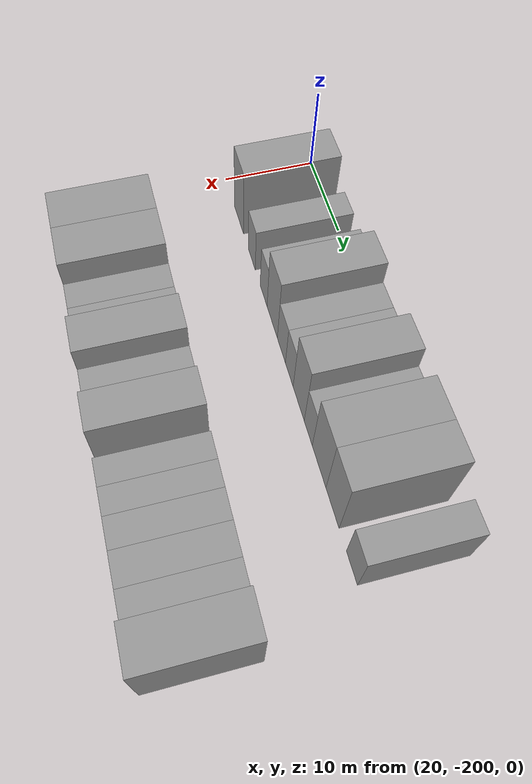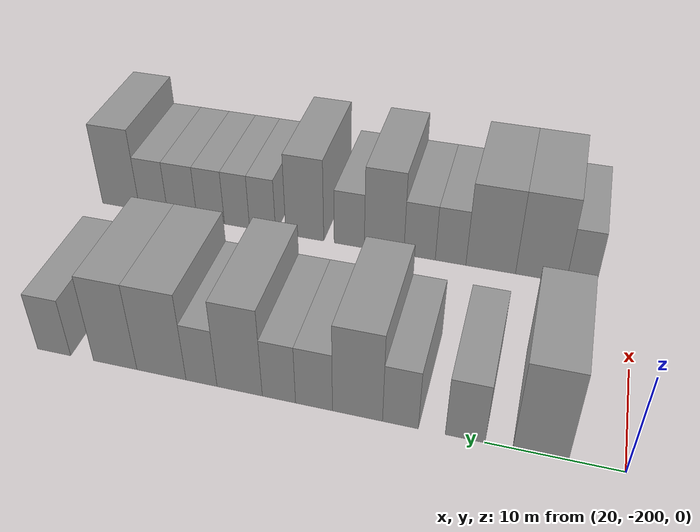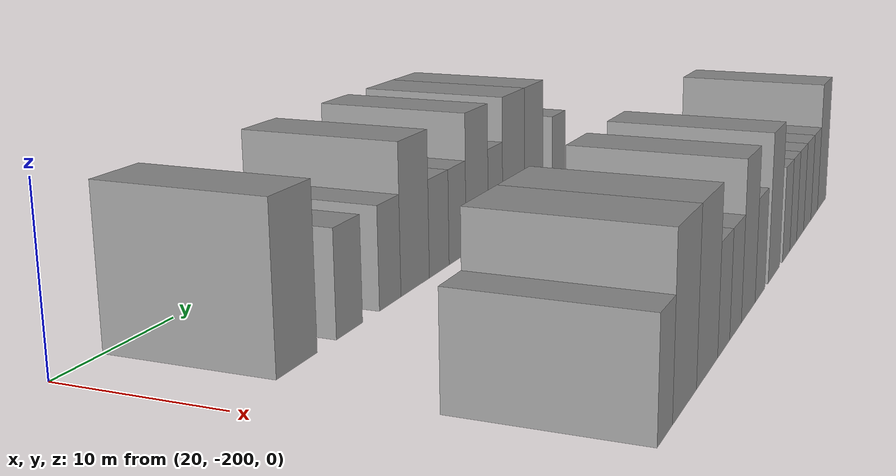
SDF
<sdf version="1.6">
 <world name="default">
  <model name="building_1">
   <static>1</static>
   <pose>25.0000 -194.0165 0 0.000000 0.000000 0.000000</pose>
   <link name="link">
    <pose>0 0 4.50 0 0 0</pose>
    <collision name="collision"><geometry><box><size>10.0000 3.9670 9.0000</size></box></geometry></collision>
    <visual name="visual">
     <cast_shadows>0</cast_shadows>
     <geometry><box><size>10.0000 3.9670 9.0000</size></box></geometry>
     <material>
      <script>
       <uri>model://grey_wall/materials/scripts</uri>
       <uri>model://grey_wall/materials/textures</uri>
       <name>vrc/grey_wall</name>
      </script>
     </material>
    </visual>
   </link>
  </model>
  <model name="building_2">
   <static>1</static>
   <pose>25.0000 -188.5718 0 0.000000 0.000000 0.000000</pose>
   <link name="link">
    <pose>0 0 3.00 0 0 0</pose>
    <collision name="collision"><geometry><box><size>10.0000 2.9225 6.0000</size></box></geometry></collision>
    <visual name="visual">
     <cast_shadows>0</cast_shadows>
     <geometry><box><size>10.0000 2.9225 6.0000</size></box></geometry>
     <material>
      <script>
       <uri>model://grey_wall/materials/scripts</uri>
       <uri>model://grey_wall/materials/textures</uri>
       <name>vrc/grey_wall</name>
      </script>
     </material>
    </visual>
   </link>
  </model>
  <model name="building_3">
   <static>1</static>
   <pose>25.0000 -183.7584 0 0.000000 0.000000 0.000000</pose>
   <link name="link">
    <pose>0 0 3.00 0 0 0</pose>
    <collision name="collision"><geometry><box><size>10.0000 2.7043 6.0000</size></box></geometry></collision>
    <visual name="visual">
     <cast_shadows>0</cast_shadows>
     <geometry><box><size>10.0000 2.7043 6.0000</size></box></geometry>
     <material>
      <script>
       <uri>model://grey_wall/materials/scripts</uri>
       <uri>model://grey_wall/materials/textures</uri>
       <name>vrc/grey_wall</name>
      </script>
     </material>
    </visual>
   </link>
  </model>
  <model name="building_4">
   <static>1</static>
   <pose>25.0000 -180.4802 0 0.000000 0.000000 0.000000</pose>
   <link name="link">
    <pose>0 0 4.50 0 0 0</pose>
    <collision name="collision"><geometry><box><size>10.0000 3.8520 9.0000</size></box></geometry></collision>
    <visual name="visual">
     <cast_shadows>0</cast_shadows>
     <geometry><box><size>10.0000 3.8520 9.0000</size></box></geometry>
     <material>
      <script>
       <uri>model://grey_wall/materials/scripts</uri>
       <uri>model://grey_wall/materials/textures</uri>
       <name>vrc/grey_wall</name>
      </script>
     </material>
    </visual>
   </link>
  </model>
  <model name="building_5">
   <static>1</static>
   <pose>25.0000 -177.1076 0 0.000000 0.000000 0.000000</pose>
   <link name="link">
    <pose>0 0 3.00 0 0 0</pose>
    <collision name="collision"><geometry><box><size>10.0000 2.8932 6.0000</size></box></geometry></collision>
    <visual name="visual">
     <cast_shadows>0</cast_shadows>
     <geometry><box><size>10.0000 2.8932 6.0000</size></box></geometry>
     <material>
      <script>
       <uri>model://grey_wall/materials/scripts</uri>
       <uri>model://grey_wall/materials/textures</uri>
       <name>vrc/grey_wall</name>
      </script>
     </material>
    </visual>
   </link>
  </model>
  <model name="building_6">
   <static>1</static>
   <pose>25.0000 -174.3342 0 0.000000 0.000000 0.000000</pose>
   <link name="link">
    <pose>0 0 3.00 0 0 0</pose>
    <collision name="collision"><geometry><box><size>10.0000 2.6536 6.0000</size></box></geometry></collision>
    <visual name="visual">
     <cast_shadows>0</cast_shadows>
     <geometry><box><size>10.0000 2.6536 6.0000</size></box></geometry>
     <material>
      <script>
       <uri>model://grey_wall/materials/scripts</uri>
       <uri>model://grey_wall/materials/textures</uri>
       <name>vrc/grey_wall</name>
      </script>
     </material>
    </visual>
   </link>
  </model>
  <model name="building_7">
   <static>1</static>
   <pose>25.0000 -171.1680 0 0.000000 0.000000 0.000000</pose>
   <link name="link">
    <pose>0 0 4.50 0 0 0</pose>
    <collision name="collision"><geometry><box><size>10.0000 3.6788 9.0000</size></box></geometry></collision>
    <visual name="visual">
     <cast_shadows>0</cast_shadows>
     <geometry><box><size>10.0000 3.6788 9.0000</size></box></geometry>
     <material>
      <script>
       <uri>model://grey_wall/materials/scripts</uri>
       <uri>model://grey_wall/materials/textures</uri>
       <name>vrc/grey_wall</name>
      </script>
     </material>
    </visual>
   </link>
  </model>
  <model name="building_8">
   <static>1</static>
   <pose>25.0000 -168.0481 0 0.000000 0.000000 0.000000</pose>
   <link name="link">
    <pose>0 0 3.00 0 0 0</pose>
    <collision name="collision"><geometry><box><size>10.0000 2.5609 6.0000</size></box></geometry></collision>
    <visual name="visual">
     <cast_shadows>0</cast_shadows>
     <geometry><box><size>10.0000 2.5609 6.0000</size></box></geometry>
     <material>
      <script>
       <uri>model://grey_wall/materials/scripts</uri>
       <uri>model://grey_wall/materials/textures</uri>
       <name>vrc/grey_wall</name>
      </script>
     </material>
    </visual>
   </link>
  </model>
  <model name="building_9">
   <static>1</static>
   <pose>25.0000 -164.6973 0 0.000000 0.000000 0.000000</pose>
   <link name="link">
    <pose>0 0 4.50 0 0 0</pose>
    <collision name="collision"><geometry><box><size>10.0000 4.1407 9.0000</size></box></geometry></collision>
    <visual name="visual">
     <cast_shadows>0</cast_shadows>
     <geometry><box><size>10.0000 4.1407 9.0000</size></box></geometry>
     <material>
      <script>
       <uri>model://grey_wall/materials/scripts</uri>
       <uri>model://grey_wall/materials/textures</uri>
       <name>vrc/grey_wall</name>
      </script>
     </material>
    </visual>
   </link>
  </model>
  <model name="building_10">
   <static>1</static>
   <pose>25.0000 -160.7534 0 0.000000 0.000000 0.000000</pose>
   <link name="link">
    <pose>0 0 4.50 0 0 0</pose>
    <collision name="collision"><geometry><box><size>10.0000 3.7471 9.0000</size></box></geometry></collision>
    <visual name="visual">
     <cast_shadows>0</cast_shadows>
     <geometry><box><size>10.0000 3.7471 9.0000</size></box></geometry>
     <material>
      <script>
       <uri>model://grey_wall/materials/scripts</uri>
       <uri>model://grey_wall/materials/textures</uri>
       <name>vrc/grey_wall</name>
      </script>
     </material>
    </visual>
   </link>
  </model>
  <model name="building_11">
   <static>1</static>
   <pose>25.0000 -155.4140 0 0.000000 0.000000 0.000000</pose>
   <link name="link">
    <pose>0 0 3.00 0 0 0</pose>
    <collision name="collision"><geometry><box><size>10.0000 2.9317 6.0000</size></box></geometry></collision>
    <visual name="visual">
     <cast_shadows>0</cast_shadows>
     <geometry><box><size>10.0000 2.9317 6.0000</size></box></geometry>
     <material>
      <script>
       <uri>model://grey_wall/materials/scripts</uri>
       <uri>model://grey_wall/materials/textures</uri>
       <name>vrc/grey_wall</name>
      </script>
     </material>
    </visual>
   </link>
  </model>
  <model name="building_99">
   <static>1</static>
   <pose>44.0000 -195.7363 0 0.000000 0.000000 0.000000</pose>
   <link name="link">
    <pose>0 0 3.00 0 0 0</pose>
    <collision name="collision"><geometry><box><size>10.0000 2.5275 6.0000</size></box></geometry></collision>
    <visual name="visual">
     <cast_shadows>0</cast_shadows>
     <geometry><box><size>10.0000 2.5275 6.0000</size></box></geometry>
     <material>
      <script>
       <uri>model://grey_wall/materials/scripts</uri>
       <uri>model://grey_wall/materials/textures</uri>
       <name>vrc/grey_wall</name>
      </script>
     </material>
    </visual>
   </link>
  </model>
  <model name="building_100">
   <static>1</static>
   <pose>44.0000 -192.2659 0 0.000000 0.000000 0.000000</pose>
   <link name="link">
    <pose>0 0 4.50 0 0 0</pose>
    <collision name="collision"><geometry><box><size>10.0000 4.4133 9.0000</size></box></geometry></collision>
    <visual name="visual">
     <cast_shadows>0</cast_shadows>
     <geometry><box><size>10.0000 4.4133 9.0000</size></box></geometry>
     <material>
      <script>
       <uri>model://grey_wall/materials/scripts</uri>
       <uri>model://grey_wall/materials/textures</uri>
       <name>vrc/grey_wall</name>
      </script>
     </material>
    </visual>
   </link>
  </model>
  <model name="building_101">
   <static>1</static>
   <pose>44.0000 -187.8545 0 0.000000 0.000000 0.000000</pose>
   <link name="link">
    <pose>0 0 4.50 0 0 0</pose>
    <collision name="collision"><geometry><box><size>10.0000 4.4096 9.0000</size></box></geometry></collision>
    <visual name="visual">
     <cast_shadows>0</cast_shadows>
     <geometry><box><size>10.0000 4.4096 9.0000</size></box></geometry>
     <material>
      <script>
       <uri>model://grey_wall/materials/scripts</uri>
       <uri>model://grey_wall/materials/textures</uri>
       <name>vrc/grey_wall</name>
      </script>
     </material>
    </visual>
   </link>
  </model>
  <model name="building_102">
   <static>1</static>
   <pose>44.0000 -184.2665 0 0.000000 0.000000 0.000000</pose>
   <link name="link">
    <pose>0 0 3.00 0 0 0</pose>
    <collision name="collision"><geometry><box><size>10.0000 2.7664 6.0000</size></box></geometry></collision>
    <visual name="visual">
     <cast_shadows>0</cast_shadows>
     <geometry><box><size>10.0000 2.7664 6.0000</size></box></geometry>
     <material>
      <script>
       <uri>model://grey_wall/materials/scripts</uri>
       <uri>model://grey_wall/materials/textures</uri>
       <name>vrc/grey_wall</name>
      </script>
     </material>
    </visual>
   </link>
  </model>
  <model name="building_103">
   <static>1</static>
   <pose>44.0000 -181.4394 0 0.000000 0.000000 0.000000</pose>
   <link name="link">
    <pose>0 0 3.00 0 0 0</pose>
    <collision name="collision"><geometry><box><size>10.0000 2.8879 6.0000</size></box></geometry></collision>
    <visual name="visual">
     <cast_shadows>0</cast_shadows>
     <geometry><box><size>10.0000 2.8879 6.0000</size></box></geometry>
     <material>
      <script>
       <uri>model://grey_wall/materials/scripts</uri>
       <uri>model://grey_wall/materials/textures</uri>
       <name>vrc/grey_wall</name>
      </script>
     </material>
    </visual>
   </link>
  </model>
  <model name="building_104">
   <static>1</static>
   <pose>44.0000 -178.1531 0 0.000000 0.000000 0.000000</pose>
   <link name="link">
    <pose>0 0 4.50 0 0 0</pose>
    <collision name="collision"><geometry><box><size>10.0000 3.6848 9.0000</size></box></geometry></collision>
    <visual name="visual">
     <cast_shadows>0</cast_shadows>
     <geometry><box><size>10.0000 3.6848 9.0000</size></box></geometry>
     <material>
      <script>
       <uri>model://grey_wall/materials/scripts</uri>
       <uri>model://grey_wall/materials/textures</uri>
       <name>vrc/grey_wall</name>
      </script>
     </material>
    </visual>
   </link>
  </model>
  <model name="building_105">
   <static>1</static>
   <pose>44.0000 -174.8920 0 0.000000 0.000000 0.000000</pose>
   <link name="link">
    <pose>0 0 3.00 0 0 0</pose>
    <collision name="collision"><geometry><box><size>10.0000 2.8373 6.0000</size></box></geometry></collision>
    <visual name="visual">
     <cast_shadows>0</cast_shadows>
     <geometry><box><size>10.0000 2.8373 6.0000</size></box></geometry>
     <material>
      <script>
       <uri>model://grey_wall/materials/scripts</uri>
       <uri>model://grey_wall/materials/textures</uri>
       <name>vrc/grey_wall</name>
      </script>
     </material>
    </visual>
   </link>
  </model>
  <model name="building_106">
   <static>1</static>
   <pose>44.0000 -170.6427 0 0.000000 0.000000 0.000000</pose>
   <link name="link">
    <pose>0 0 4.50 0 0 0</pose>
    <collision name="collision"><geometry><box><size>10.0000 3.6615 9.0000</size></box></geometry></collision>
    <visual name="visual">
     <cast_shadows>0</cast_shadows>
     <geometry><box><size>10.0000 3.6615 9.0000</size></box></geometry>
     <material>
      <script>
       <uri>model://grey_wall/materials/scripts</uri>
       <uri>model://grey_wall/materials/textures</uri>
       <name>vrc/grey_wall</name>
      </script>
     </material>
    </visual>
   </link>
  </model>
  <model name="building_107">
   <static>1</static>
   <pose>44.0000 -166.5300 0 0.000000 0.000000 0.000000</pose>
   <link name="link">
    <pose>0 0 3.00 0 0 0</pose>
    <collision name="collision"><geometry><box><size>10.0000 2.5639 6.0000</size></box></geometry></collision>
    <visual name="visual">
     <cast_shadows>0</cast_shadows>
     <geometry><box><size>10.0000 2.5639 6.0000</size></box></geometry>
     <material>
      <script>
       <uri>model://grey_wall/materials/scripts</uri>
       <uri>model://grey_wall/materials/textures</uri>
       <name>vrc/grey_wall</name>
      </script>
     </material>
    </visual>
   </link>
  </model>
  <model name="building_108">
   <static>1</static>
   <pose>44.0000 -163.9997 0 0.000000 0.000000 0.000000</pose>
   <link name="link">
    <pose>0 0 3.00 0 0 0</pose>
    <collision name="collision"><geometry><box><size>10.0000 2.4967 6.0000</size></box></geometry></collision>
    <visual name="visual">
     <cast_shadows>0</cast_shadows>
     <geometry><box><size>10.0000 2.4967 6.0000</size></box></geometry>
     <material>
      <script>
       <uri>model://grey_wall/materials/scripts</uri>
       <uri>model://grey_wall/materials/textures</uri>
       <name>vrc/grey_wall</name>
      </script>
     </material>
    </visual>
   </link>
  </model>
  <model name="building_109">
   <static>1</static>
   <pose>44.0000 -161.3671 0 0.000000 0.000000 0.000000</pose>
   <link name="link">
    <pose>0 0 3.00 0 0 0</pose>
    <collision name="collision"><geometry><box><size>10.0000 2.7685 6.0000</size></box></geometry></collision>
    <visual name="visual">
     <cast_shadows>0</cast_shadows>
     <geometry><box><size>10.0000 2.7685 6.0000</size></box></geometry>
     <material>
      <script>
       <uri>model://grey_wall/materials/scripts</uri>
       <uri>model://grey_wall/materials/textures</uri>
       <name>vrc/grey_wall</name>
      </script>
     </material>
    </visual>
   </link>
  </model>
  <model name="building_110">
   <static>1</static>
   <pose>44.0000 -158.4844 0 0.000000 0.000000 0.000000</pose>
   <link name="link">
    <pose>0 0 3.00 0 0 0</pose>
    <collision name="collision"><geometry><box><size>10.0000 2.9970 6.0000</size></box></geometry></collision>
    <visual name="visual">
     <cast_shadows>0</cast_shadows>
     <geometry><box><size>10.0000 2.9970 6.0000</size></box></geometry>
     <material>
      <script>
       <uri>model://grey_wall/materials/scripts</uri>
       <uri>model://grey_wall/materials/textures</uri>
       <name>vrc/grey_wall</name>
      </script>
     </material>
    </visual>
   </link>
  </model>
  <model name="building_111">
   <static>1</static>
   <pose>44.0000 -155.5258 0 0.000000 0.000000 0.000000</pose>
   <link name="link">
    <pose>0 0 3.00 0 0 0</pose>
    <collision name="collision"><geometry><box><size>10.0000 2.9201 6.0000</size></box></geometry></collision>
    <visual name="visual">
     <cast_shadows>0</cast_shadows>
     <geometry><box><size>10.0000 2.9201 6.0000</size></box></geometry>
     <material>
      <script>
       <uri>model://grey_wall/materials/scripts</uri>
       <uri>model://grey_wall/materials/textures</uri>
       <name>vrc/grey_wall</name>
      </script>
     </material>
    </visual>
   </link>
  </model>
  <model name="building_112">
   <static>1</static>
   <pose>44.0000 -152.1196 0 0.000000 0.000000 0.000000</pose>
   <link name="link">
    <pose>0 0 4.50 0 0 0</pose>
    <collision name="collision"><geometry><box><size>10.0000 3.8923 9.0000</size></box></geometry></collision>
    <visual name="visual">
     <cast_shadows>0</cast_shadows>
     <geometry><box><size>10.0000 3.8923 9.0000</size></box></geometry>
     <material>
      <script>
       <uri>model://grey_wall/materials/scripts</uri>
       <uri>model://grey_wall/materials/textures</uri>
       <name>vrc/grey_wall</name>
      </script>
     </material>
    </visual>
   </link>
  </model>
 </world>
</sdf>
